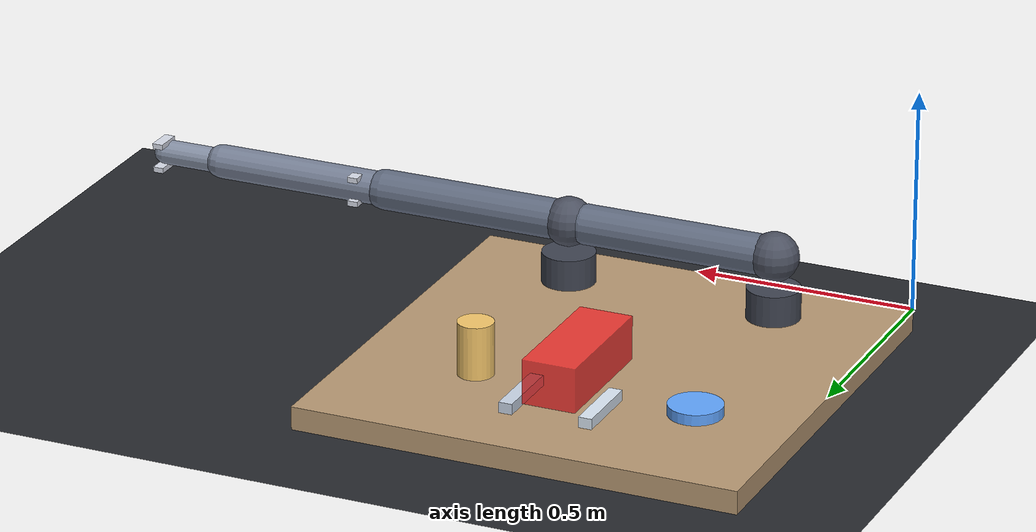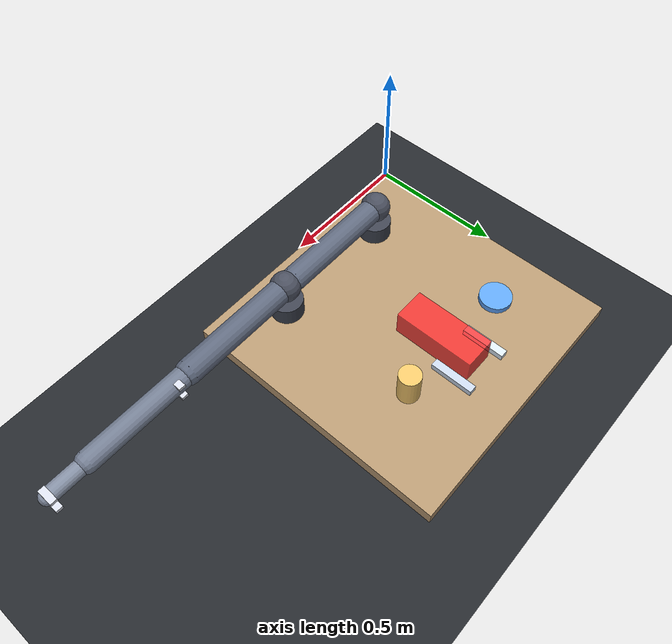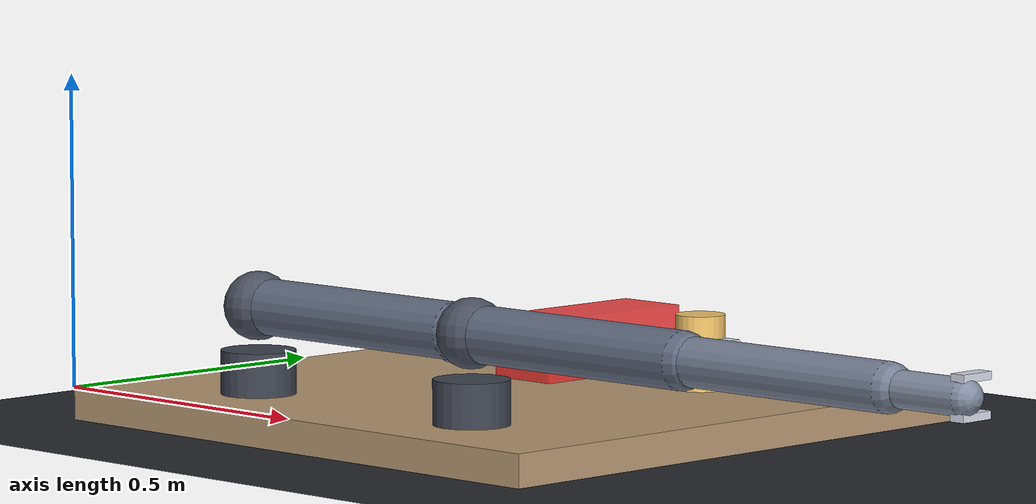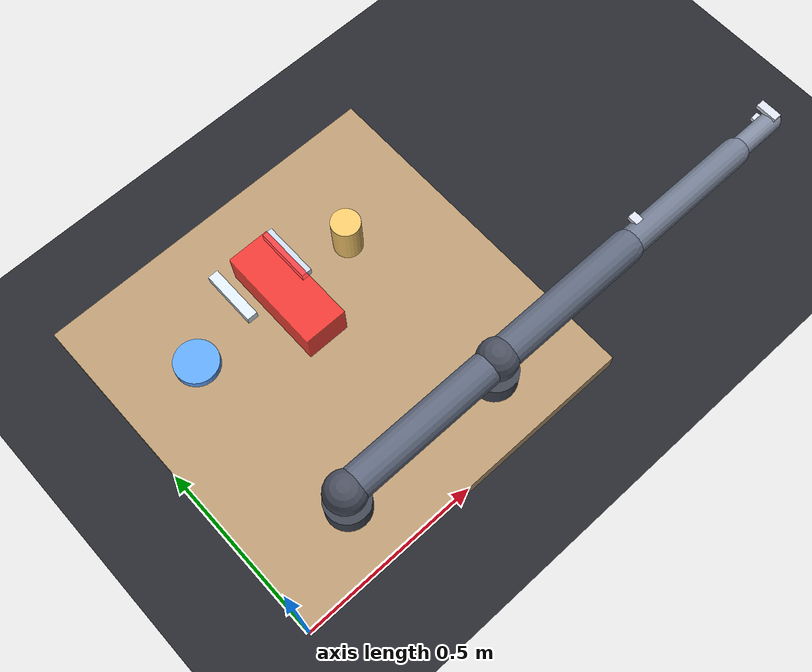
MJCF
<mujoco model="voxhands_workcell">
  <compiler angle="degree" coordinate="local" eulerseq="xyz" discardvisual="false"/>
  <option timestep="0.001" gravity="0 0 -9.81" iterations="40" tolerance="1e-8"/>
  <size njmax="2000" nconmax="1200" nstack="6000000"/>
  <visual>
    <global offwidth="1024" offheight="1024"/>
  </visual>

  <default>
    <geom contype="1" conaffinity="1" friction="1 0.005 0.001"/>
    <joint damping="0.02" armature="0.1"/>
    <material specular="0.0" shininess="0.0"/>
  </default>

  <worldbody>
    <light name="key" pos="0.5 1.0 2.2" dir="0 -0.5 -1" directional="true" diffuse="0.55 0.55 0.55" specular="0.05 0.05 0.05" castshadow="false"/>
    <light name="fill" pos="1.4 0.5 1.4" dir="-1 0 -0.5" directional="true" diffuse="0.35 0.35 0.35" specular="0.01 0.01 0.01" castshadow="false"/>
    <geom name="ground" type="plane" pos="0 0 -0.05" size="3 3 0.05" rgba="0.15 0.16 0.18 1" contype="1" conaffinity="1"/>

    <geom name="table" type="box" pos="0.5 0.5 -0.03" size="0.5 0.5 0.03" rgba="0.72 0.60 0.45 1" friction="0.9 0.005 0.001"/>

    <body name="red_barrier" pos="0.5 0.66 0.06">
      <geom name="red_barrier_geom" type="box" size="0.06 0.15 0.05" rgba="1 0.2 0.2 0.85" contype="0" conaffinity="0"/>
    </body>

    <!-- ================= LEFT ARM ================= -->
    <body name="L_base" pos="0.26 0.16 0.0">
      <geom name="L_base_geom" type="cylinder" size="0.06 0.035" pos="0 0 0.035" rgba="0.25 0.27 0.32 1" mass="1.2"/>
      <joint name="left_base_yaw" type="hinge" axis="0 0 1" pos="0 0 0.02" limited="true" range="-175 175"/>
      <body name="L_shoulder" pos="0 0 0.0">
        <geom name="L_shoulder_geom" type="sphere" size="0.055" pos="0 0 0.14" rgba="0.3 0.32 0.38 1" mass="0.8"/>
        <joint name="left_shoulder" type="hinge" axis="0 1 0" pos="0 0 0.14" limited="true" range="-150 150"/>
        <body name="L_upper" pos="0 0 0.14">
          <geom name="L_upper_geom" type="capsule" size="0.045" fromto="0 0 0 0.44 0 0" rgba="0.38 0.42 0.5 1" mass="1.4"/>
          <joint name="left_elbow" type="hinge" axis="0 1 0" pos="0.44 0 0" limited="true" range="-150 150"/>
          <body name="L_fore" pos="0.44 0 0">
            <geom name="L_fore_geom" type="capsule" size="0.038" fromto="0 0 0 0.40 0 0" rgba="0.46 0.5 0.58 1" mass="1.0"/>
            <joint name="left_wrist_pitch" type="hinge" axis="0 1 0" pos="0.40 0 0" limited="true" range="-150 150"/>
            <body name="L_hand" pos="0.40 0 0">
              <geom name="L_hand_geom" type="capsule" size="0.028" fromto="0 0 0 0.14 0 0" rgba="0.52 0.56 0.64 1" mass="0.3"/>
              <site name="left_grip_site" pos="0.14 0 0" type="sphere" size="0.008" rgba="1 0.85 0.2 1"/>
              <joint name="left_wrist_roll" type="hinge" axis="1 0 0" pos="0.14 0 0" limited="true" range="-90 90"/>
              <body name="L_grip" pos="0.14 0 0">
                <joint name="left_fing_left" type="slide" axis="0 0 1" pos="0 0 0" limited="true" range="-0.03 0.02"/>
                <body name="L_finger_left" pos="0 0 0">
                  <geom name="L_finger_left_geom" type="box" size="0.012 0.03 0.006" pos="0 0.015 -0.028" rgba="0.85 0.87 0.92 1" mass="0.02"/>
                </body>
                <joint name="left_fing_right" type="slide" axis="0 0 1" pos="0 0 0" limited="true" range="-0.02 0.03"/>
                <body name="L_finger_right" pos="0 0 0">
                  <geom name="L_finger_right_geom" type="box" size="0.012 0.03 0.006" pos="0 0.015 0.028" rgba="0.85 0.87 0.92 1" mass="0.02"/>
                </body>
              </body>
            </body>
          </body>
        </body>
      </body>
    </body>

    <!-- ================= RIGHT ARM ================= -->
    <body name="R_base" pos="0.74 0.16 0.0">
      <geom name="R_base_geom" type="cylinder" size="0.06 0.035" pos="0 0 0.035" rgba="0.25 0.27 0.32 1" mass="1.2"/>
      <joint name="right_base_yaw" type="hinge" axis="0 0 1" pos="0 0 0.02" limited="true" range="-175 175"/>
      <body name="R_shoulder" pos="0 0 0.0">
        <geom name="R_shoulder_geom" type="sphere" size="0.055" pos="0 0 0.14" rgba="0.3 0.32 0.38 1" mass="0.8"/>
        <joint name="right_shoulder" type="hinge" axis="0 1 0" pos="0 0 0.14" limited="true" range="-150 150"/>
        <body name="R_upper" pos="0 0 0.14">
          <geom name="R_upper_geom" type="capsule" size="0.045" fromto="0 0 0 0.44 0 0" rgba="0.38 0.42 0.5 1" mass="1.4"/>
          <joint name="right_elbow" type="hinge" axis="0 1 0" pos="0.44 0 0" limited="true" range="-150 150"/>
          <body name="R_fore" pos="0.44 0 0">
            <geom name="R_fore_geom" type="capsule" size="0.038" fromto="0 0 0 0.40 0 0" rgba="0.46 0.5 0.58 1" mass="1.0"/>
            <joint name="right_wrist_pitch" type="hinge" axis="0 1 0" pos="0.40 0 0" limited="true" range="-150 150"/>
            <body name="R_hand" pos="0.40 0 0">
              <geom name="R_hand_geom" type="capsule" size="0.028" fromto="0 0 0 0.14 0 0" rgba="0.52 0.56 0.64 1" mass="0.3"/>
              <site name="right_grip_site" pos="0.14 0 0" type="sphere" size="0.008" rgba="1 0.85 0.2 1"/>
              <joint name="right_wrist_roll" type="hinge" axis="1 0 0" pos="0.14 0 0" limited="true" range="-90 90"/>
              <body name="R_grip" pos="0.14 0 0">
                <joint name="right_fing_left" type="slide" axis="0 0 1" pos="0 0 0" limited="true" range="-0.03 0.02"/>
                <body name="R_finger_left" pos="0 0 0">
                  <geom name="R_finger_left_geom" type="box" size="0.012 0.03 0.006" pos="0 0.015 -0.028" rgba="0.85 0.87 0.92 1" mass="0.02"/>
                </body>
                <joint name="right_fing_right" type="slide" axis="0 0 1" pos="0 0 0" limited="true" range="-0.02 0.03"/>
                <body name="R_finger_right" pos="0 0 0">
                  <geom name="R_finger_right_geom" type="box" size="0.012 0.03 0.006" pos="0 0.015 0.028" rgba="0.85 0.87 0.92 1" mass="0.02"/>
                </body>
              </body>
            </body>
          </body>
        </body>
      </body>
    </body>

    <!-- ================= OBJECTS ================= -->
    <body name="blue_plate" pos="0.22 0.69 0.012">
      <freejoint/>
      <geom name="blue_plate_geom" type="cylinder" size="0.06 0.012" rgba="0.38 0.65 1.0 1" mass="0.08"/>
    </body>
    <body name="cup" pos="0.72 0.69 0.06">
      <freejoint/>
      <geom name="cup_geom" type="cylinder" size="0.04 0.06" rgba="0.96 0.78 0.42 1" mass="0.05"/>
    </body>
    <body name="fork" pos="0.40 0.77 0.012">
      <freejoint/>
      <geom name="fork_geom" type="box" size="0.015 0.08 0.012" rgba="0.86 0.91 0.96 1" mass="0.03"/>
    </body>
    <body name="spoon" pos="0.58 0.77 0.012">
      <freejoint/>
      <geom name="spoon_geom" type="box" size="0.015 0.08 0.012" rgba="0.79 0.84 0.91 1" mass="0.03"/>
    </body>

    <!-- ================= CAMERAS ================= -->
    <camera name="overhead" pos="0.5 0.5 1.35" xyaxes="1 0 0 0 1 0" fovy="55"/>
    <camera name="operator" pos="1.05 0.45 0.95" xyaxes="0.5 0.866 0 -0.5 0.29 0.82" fovy="50"/>
  </worldbody>

  <actuator>
    <position name="left_base_yaw" joint="left_base_yaw" kp="400" damping="30" ctrlrange="-175 175"/>
    <position name="left_shoulder" joint="left_shoulder" kp="400" damping="30" ctrlrange="-150 150"/>
    <position name="left_elbow" joint="left_elbow" kp="400" damping="30" ctrlrange="-150 150"/>
    <position name="left_wrist_pitch" joint="left_wrist_pitch" kp="400" damping="30" ctrlrange="-150 150"/>
    <position name="left_wrist_roll" joint="left_wrist_roll" kp="200" damping="10" ctrlrange="-90 90"/>
    <position name="left_fing_left" joint="left_fing_left" kp="200" damping="15"/>
    <position name="left_fing_right" joint="left_fing_right" kp="200" damping="15"/>

    <position name="right_base_yaw" joint="right_base_yaw" kp="400" damping="30" ctrlrange="-175 175"/>
    <position name="right_shoulder" joint="right_shoulder" kp="400" damping="30" ctrlrange="-150 150"/>
    <position name="right_elbow" joint="right_elbow" kp="400" damping="30" ctrlrange="-150 150"/>
    <position name="right_wrist_pitch" joint="right_wrist_pitch" kp="400" damping="30" ctrlrange="-150 150"/>
    <position name="right_wrist_roll" joint="right_wrist_roll" kp="200" damping="10" ctrlrange="-90 90"/>
    <position name="right_fing_left" joint="right_fing_left" kp="200" damping="15"/>
    <position name="right_fing_right" joint="right_fing_right" kp="200" damping="15"/>
  </actuator>
</mujoco>
